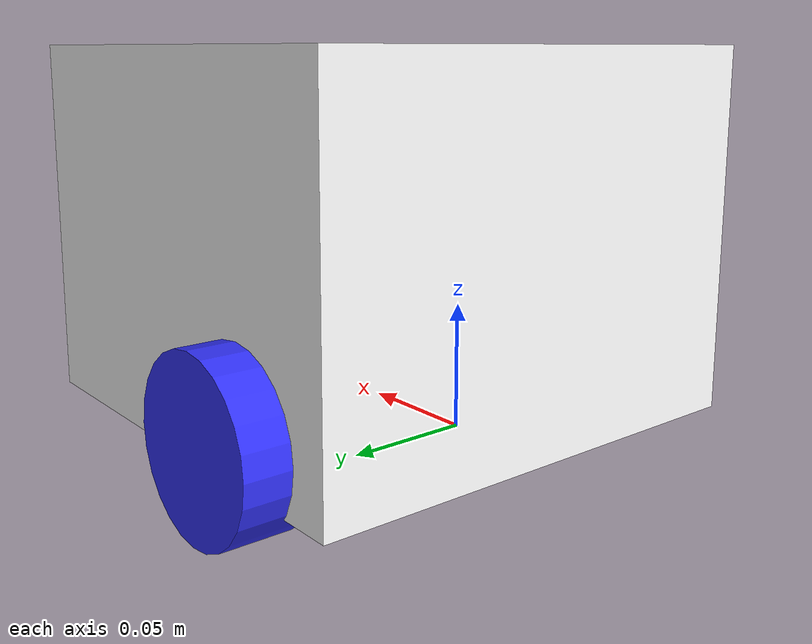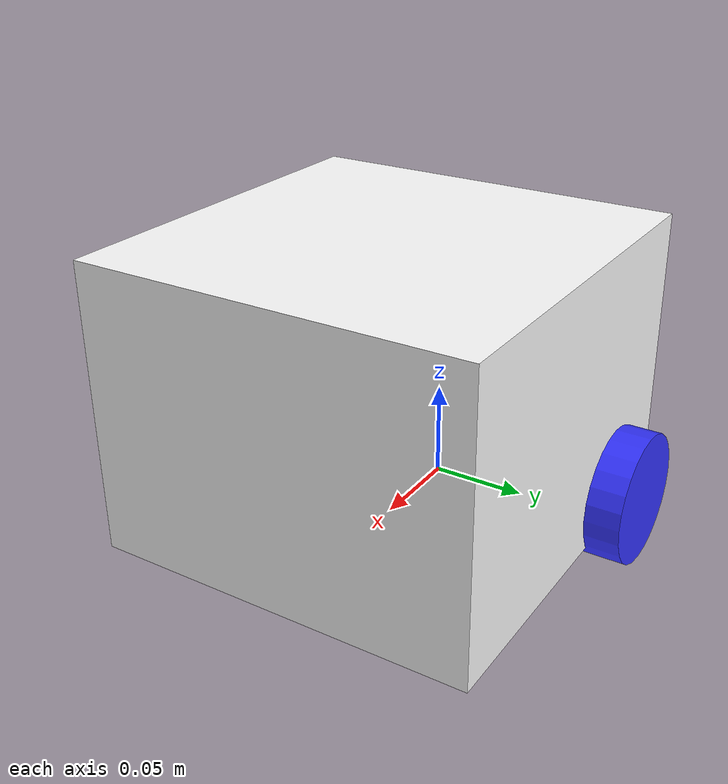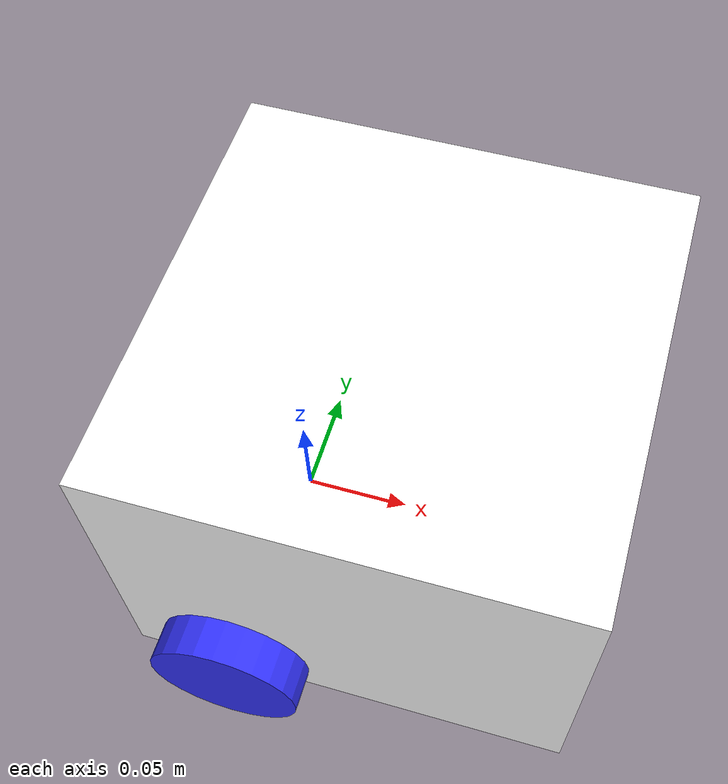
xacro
<?xml version="1.0"?>
<robot xmlns:xacro="http://www.ros.org/wiki/xacro">

    <xacro:include filename="inertial_macros.xacro" />

    <!-- COLORS -->
    <material name="white">
        <color rgba="1 1 1 1" />
    </material>
    <material name="black">
        <color rgba="0.2 0.2 0.2 1" />
    </material>
    <material name="red">
        <color rgba="1 0.2 0.2 1" />
    </material>
    <material name="green">
        <color rgba="0.2 1 0.2 1" />
    </material>
    <material name="blue">
        <color rgba="0.2 0.2 1 1" />
    </material>
    <material name="orange">
        <color rgba="1 0.3 0.1 1" />
    </material>

    <!-- BASE LINK -->

    <link name="base_link" >

    </link>

    <!-- CHASSIS LINK -->

    <joint name="chassis_joint" type="fixed">
        <parent link="base_link" />
        <child link="chassis" />
        <origin xyz="-0.05 0 0" />
    </joint>

    <link name="chassis" >
        <visual>
            <origin xyz="0.1 0 0.075" />
            <geometry>
                <box size="0.2 0.2 0.15" />
            </geometry>
            <material name="white" />
        </visual>
        <collision>
            <origin xyz="0.1 0 0.075" />
            <geometry>
                <box size="0.2 0.2 0.15" />
            </geometry>
        </collision>
        <xacro:inertial_box mass="0.5" x="0.2" y="0.2" z="0.15">
            <origin xyz="0.1 0 0.075" rpy="0 0 0" />
        </xacro:inertial_box>
    </link>

    <!-- LEFT WHEEL LINK -->

    <joint name="left_wheel_joint" type="continuous">
        <parent link="base_link" />
        <child link="left_wheel" />
        <origin xyz="0 0.104 0.019" rpy="-${pi/2} 0 0" />
        <axis xyz="0 0 1" />
    </joint>

    <link name="left_wheel" >
        <visual>
            <geometry>
                <cylinder radius="0.034" length="0.028"/>
            </geometry>
            <material name="blue" />
        </visual>
        <collision>
            <geometry>
                <cylinder radius="0.034" length="0.028"/>
            </geometry>
        </collision>
        <xacro:inertial_cylinder mass="0.1" length="0.028" radius="0.034">
            <origin xyz="0 0 0" rpy="0 0 0" />
        </xacro:inertial_cylinder>
    </link>

    <!-- RIGHT WHEEL LINK -->

    <joint name="right_wheel_joint" type="continuous">
        <parent link="base_link" />
        <child link="right_wheel" />
        <origin xyz="0 -0.104 0.019" rpy="${pi/2} 0 0" />
        <axis xyz="0 0 -1" />
    </joint>

    <link name="right_wheel" >
        <visual>
            <geometry>
                <cylinder radius="0.034" length="0.028"/>
            </geometry>
            <material name="blue" />
        </visual>
        <collision>
            <geometry>
                <cylinder radius="0.034" length="0.028"/>
            </geometry>
        </collision>
        <xacro:inertial_cylinder mass="0.1" length="0.028" radius="0.034">
            <origin xyz="0 0 0" rpy="0 0 0" />
        </xacro:inertial_cylinder>
    </link>

    <!-- CASTER WHEEL LINK -->

    <joint name="caster_wheel_joint" type="fixed">
        <parent link="chassis" />
        <child link="caster_wheel" />
        <origin xyz="0.15 0 0.019"/>
    </joint>

    <link name="caster_wheel" >
        <visual>
            <geometry>
                <sphere radius="0.034" />
            </geometry>
            <material name="black" />
        </visual>
        <collision>
            <geometry>
                <sphere radius="0.034" />
            </geometry>
        </collision>
        <xacro:inertial_sphere mass="0.1" radius="0.034">
            <origin xyz="0 0 0" rpy="0 0 0" />
        </xacro:inertial_sphere>
    </link>

</robot>
